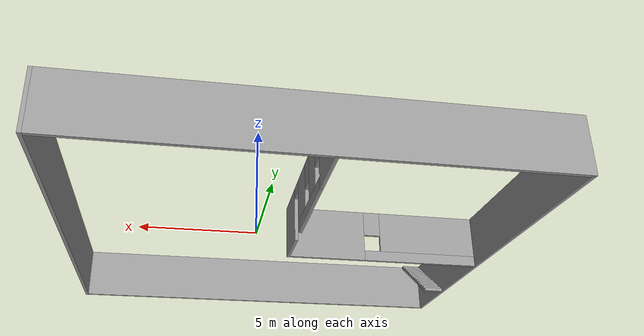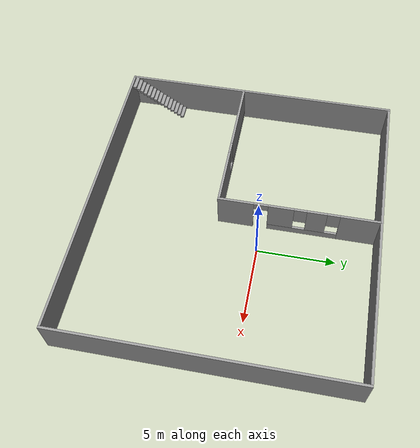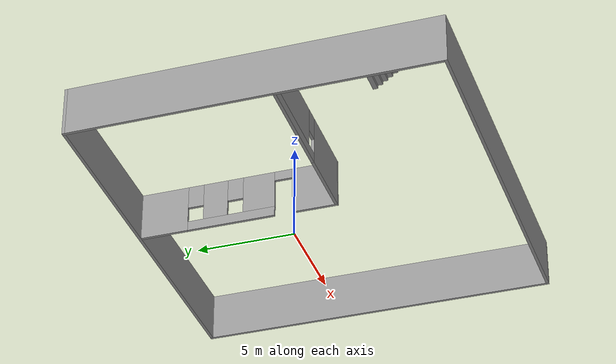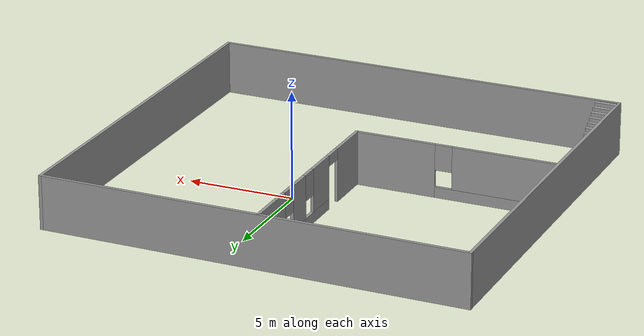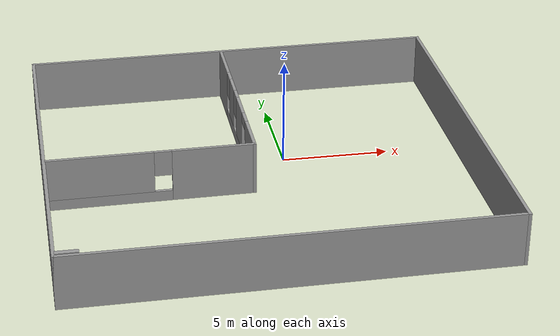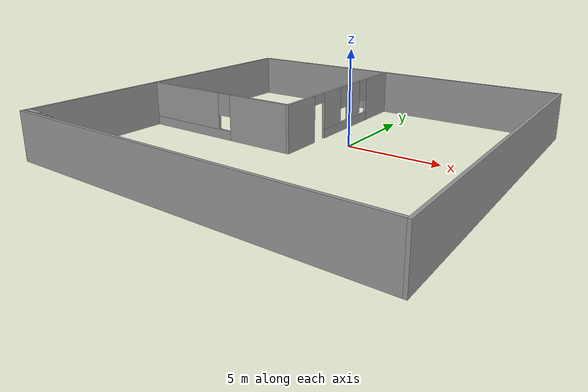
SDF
<?xml version='1.0'?>
<sdf version='1.6'>
  <model name='WorldModel'>
    <pose frame=''>-1.45724 -1.69888 0 0 -0 0</pose>
    <link name='Stairs_0'>
      <visual name='Stairs_0_Visual_0'>
        <pose frame=''>-9.284 -5.52564 0.083333 0 -0 0</pose>
        <geometry>
          <box>
            <size>1 0.233333 0.166667</size>
          </box>
        </geometry>
        <material>
          <script>
            <uri>file://media/materials/scripts/gazebo.material</uri>
            <name>Gazebo/Grey</name>
          </script>
          <ambient>1 1 1 1</ambient>
        </material>
      </visual>
      <collision name='Stairs_0_Collision_0'>
        <geometry>
          <box>
            <size>1 0.233333 0.166667</size>
          </box>
        </geometry>
        <pose frame=''>-9.284 -5.52564 0.083333 0 -0 0</pose>
      </collision>
      <visual name='Stairs_0_Visual_1'>
        <pose frame=''>-9.284 -5.75897 0.25 0 -0 0</pose>
        <geometry>
          <box>
            <size>1 0.233333 0.166667</size>
          </box>
        </geometry>
        <material>
          <script>
            <uri>file://media/materials/scripts/gazebo.material</uri>
            <name>Gazebo/Grey</name>
          </script>
          <ambient>1 1 1 1</ambient>
        </material>
      </visual>
      <collision name='Stairs_0_Collision_1'>
        <geometry>
          <box>
            <size>1 0.233333 0.166667</size>
          </box>
        </geometry>
        <pose frame=''>-9.284 -5.75897 0.25 0 -0 0</pose>
      </collision>
      <visual name='Stairs_0_Visual_2'>
        <pose frame=''>-9.284 -5.9923 0.416667 0 -0 0</pose>
        <geometry>
          <box>
            <size>1 0.233333 0.166667</size>
          </box>
        </geometry>
        <material>
          <script>
            <uri>file://media/materials/scripts/gazebo.material</uri>
            <name>Gazebo/Grey</name>
          </script>
          <ambient>1 1 1 1</ambient>
        </material>
      </visual>
      <collision name='Stairs_0_Collision_2'>
        <geometry>
          <box>
            <size>1 0.233333 0.166667</size>
          </box>
        </geometry>
        <pose frame=''>-9.284 -5.9923 0.416667 0 -0 0</pose>
      </collision>
      <visual name='Stairs_0_Visual_3'>
        <pose frame=''>-9.284 -6.22564 0.583333 0 -0 0</pose>
        <geometry>
          <box>
            <size>1 0.233333 0.166667</size>
          </box>
        </geometry>
        <material>
          <script>
            <uri>file://media/materials/scripts/gazebo.material</uri>
            <name>Gazebo/Grey</name>
          </script>
          <ambient>1 1 1 1</ambient>
        </material>
      </visual>
      <collision name='Stairs_0_Collision_3'>
        <geometry>
          <box>
            <size>1 0.233333 0.166667</size>
          </box>
        </geometry>
        <pose frame=''>-9.284 -6.22564 0.583333 0 -0 0</pose>
      </collision>
      <visual name='Stairs_0_Visual_4'>
        <pose frame=''>-9.284 -6.45897 0.75 0 -0 0</pose>
        <geometry>
          <box>
            <size>1 0.233333 0.166667</size>
          </box>
        </geometry>
        <material>
          <script>
            <uri>file://media/materials/scripts/gazebo.material</uri>
            <name>Gazebo/Grey</name>
          </script>
          <ambient>1 1 1 1</ambient>
        </material>
      </visual>
      <collision name='Stairs_0_Collision_4'>
        <geometry>
          <box>
            <size>1 0.233333 0.166667</size>
          </box>
        </geometry>
        <pose frame=''>-9.284 -6.45897 0.75 0 -0 0</pose>
      </collision>
      <visual name='Stairs_0_Visual_5'>
        <pose frame=''>-9.284 -6.6923 0.916667 0 -0 0</pose>
        <geometry>
          <box>
            <size>1 0.233333 0.166667</size>
          </box>
        </geometry>
        <material>
          <script>
            <uri>file://media/materials/scripts/gazebo.material</uri>
            <name>Gazebo/Grey</name>
          </script>
          <ambient>1 1 1 1</ambient>
        </material>
      </visual>
      <collision name='Stairs_0_Collision_5'>
        <geometry>
          <box>
            <size>1 0.233333 0.166667</size>
          </box>
        </geometry>
        <pose frame=''>-9.284 -6.6923 0.916667 0 -0 0</pose>
      </collision>
      <visual name='Stairs_0_Visual_6'>
        <pose frame=''>-9.284 -6.92564 1.08333 0 -0 0</pose>
        <geometry>
          <box>
            <size>1 0.233333 0.166667</size>
          </box>
        </geometry>
        <material>
          <script>
            <uri>file://media/materials/scripts/gazebo.material</uri>
            <name>Gazebo/Grey</name>
          </script>
          <ambient>1 1 1 1</ambient>
        </material>
      </visual>
      <collision name='Stairs_0_Collision_6'>
        <geometry>
          <box>
            <size>1 0.233333 0.166667</size>
          </box>
        </geometry>
        <pose frame=''>-9.284 -6.92564 1.08333 0 -0 0</pose>
      </collision>
      <visual name='Stairs_0_Visual_7'>
        <pose frame=''>-9.284 -7.15897 1.25 0 -0 0</pose>
        <geometry>
          <box>
            <size>1 0.233333 0.166667</size>
          </box>
        </geometry>
        <material>
          <script>
            <uri>file://media/materials/scripts/gazebo.material</uri>
            <name>Gazebo/Grey</name>
          </script>
          <ambient>1 1 1 1</ambient>
        </material>
      </visual>
      <collision name='Stairs_0_Collision_7'>
        <geometry>
          <box>
            <size>1 0.233333 0.166667</size>
          </box>
        </geometry>
        <pose frame=''>-9.284 -7.15897 1.25 0 -0 0</pose>
      </collision>
      <visual name='Stairs_0_Visual_8'>
        <pose frame=''>-9.284 -7.39231 1.41667 0 -0 0</pose>
        <geometry>
          <box>
            <size>1 0.233333 0.166667</size>
          </box>
        </geometry>
        <material>
          <script>
            <uri>file://media/materials/scripts/gazebo.material</uri>
            <name>Gazebo/Grey</name>
          </script>
          <ambient>1 1 1 1</ambient>
        </material>
      </visual>
      <collision name='Stairs_0_Collision_8'>
        <geometry>
          <box>
            <size>1 0.233333 0.166667</size>
          </box>
        </geometry>
        <pose frame=''>-9.284 -7.39231 1.41667 0 -0 0</pose>
      </collision>
      <visual name='Stairs_0_Visual_9'>
        <pose frame=''>-9.284 -7.62564 1.58333 0 -0 0</pose>
        <geometry>
          <box>
            <size>1 0.233333 0.166667</size>
          </box>
        </geometry>
        <material>
          <script>
            <uri>file://media/materials/scripts/gazebo.material</uri>
            <name>Gazebo/Grey</name>
          </script>
          <ambient>1 1 1 1</ambient>
        </material>
      </visual>
      <collision name='Stairs_0_Collision_9'>
        <geometry>
          <box>
            <size>1 0.233333 0.166667</size>
          </box>
        </geometry>
        <pose frame=''>-9.284 -7.62564 1.58333 0 -0 0</pose>
      </collision>
      <visual name='Stairs_0_Visual_10'>
        <pose frame=''>-9.284 -7.85897 1.75 0 -0 0</pose>
        <geometry>
          <box>
            <size>1 0.233333 0.166667</size>
          </box>
        </geometry>
        <material>
          <script>
            <uri>file://media/materials/scripts/gazebo.material</uri>
            <name>Gazebo/Grey</name>
          </script>
          <ambient>1 1 1 1</ambient>
        </material>
      </visual>
      <collision name='Stairs_0_Collision_10'>
        <geometry>
          <box>
            <size>1 0.233333 0.166667</size>
          </box>
        </geometry>
        <pose frame=''>-9.284 -7.85897 1.75 0 -0 0</pose>
      </collision>
      <visual name='Stairs_0_Visual_11'>
        <pose frame=''>-9.284 -8.0923 1.91667 0 -0 0</pose>
        <geometry>
          <box>
            <size>1 0.233333 0.166667</size>
          </box>
        </geometry>
        <material>
          <script>
            <uri>file://media/materials/scripts/gazebo.material</uri>
            <name>Gazebo/Grey</name>
          </script>
          <ambient>1 1 1 1</ambient>
        </material>
      </visual>
      <collision name='Stairs_0_Collision_11'>
        <geometry>
          <box>
            <size>1 0.233333 0.166667</size>
          </box>
        </geometry>
        <pose frame=''>-9.284 -8.0923 1.91667 0 -0 0</pose>
      </collision>
      <visual name='Stairs_0_Visual_12'>
        <pose frame=''>-9.284 -8.32564 2.08333 0 -0 0</pose>
        <geometry>
          <box>
            <size>1 0.233333 0.166667</size>
          </box>
        </geometry>
        <material>
          <script>
            <uri>file://media/materials/scripts/gazebo.material</uri>
            <name>Gazebo/Grey</name>
          </script>
          <ambient>1 1 1 1</ambient>
        </material>
      </visual>
      <collision name='Stairs_0_Collision_12'>
        <geometry>
          <box>
            <size>1 0.233333 0.166667</size>
          </box>
        </geometry>
        <pose frame=''>-9.284 -8.32564 2.08333 0 -0 0</pose>
      </collision>
      <visual name='Stairs_0_Visual_13'>
        <pose frame=''>-9.284 -8.55897 2.25 0 -0 0</pose>
        <geometry>
          <box>
            <size>1 0.233333 0.166667</size>
          </box>
        </geometry>
        <material>
          <script>
            <uri>file://media/materials/scripts/gazebo.material</uri>
            <name>Gazebo/Grey</name>
          </script>
          <ambient>1 1 1 1</ambient>
        </material>
      </visual>
      <collision name='Stairs_0_Collision_13'>
        <geometry>
          <box>
            <size>1 0.233333 0.166667</size>
          </box>
        </geometry>
        <pose frame=''>-9.284 -8.55897 2.25 0 -0 0</pose>
      </collision>
      <visual name='Stairs_0_Visual_14'>
        <pose frame=''>-9.284 -8.79231 2.41667 0 -0 0</pose>
        <geometry>
          <box>
            <size>1 0.233333 0.166667</size>
          </box>
        </geometry>
        <material>
          <script>
            <uri>file://media/materials/scripts/gazebo.material</uri>
            <name>Gazebo/Grey</name>
          </script>
          <ambient>1 1 1 1</ambient>
        </material>
      </visual>
      <collision name='Stairs_0_Collision_14'>
        <geometry>
          <box>
            <size>1 0.233333 0.166667</size>
          </box>
        </geometry>
        <pose frame=''>-9.284 -8.79231 2.41667 0 -0 0</pose>
      </collision>
    </link>
    <link name='Wall_2'>
      <collision name='Wall_2_Collision'>
        <geometry>
          <box>
            <size>18.25 0.15 2.5</size>
          </box>
        </geometry>
        <pose frame=''>0 0 1.25 0 -0 0</pose>
      </collision>
      <visual name='Wall_2_Visual'>
        <pose frame=''>0 0 1.25 0 -0 0</pose>
        <geometry>
          <box>
            <size>18.25 0.15 2.5</size>
          </box>
        </geometry>
        <material>
          <script>
            <uri>file://media/materials/scripts/gazebo.material</uri>
            <name>Gazebo/Grey</name>
          </script>
          <ambient>1 1 1 1</ambient>
        </material>
      </visual>
      <pose frame=''>-9.82344 0 0 0 0 -1.5708</pose>
    </link>
    <link name='Wall_3'>
      <collision name='Wall_3_Collision'>
        <geometry>
          <box>
            <size>19.6554 0.15 2.5</size>
          </box>
        </geometry>
        <pose frame=''>0 0 1.25 0 -0 0</pose>
      </collision>
      <visual name='Wall_3_Visual'>
        <pose frame=''>0 0 1.25 0 -0 0</pose>
        <geometry>
          <box>
            <size>19.6554 0.15 2.5</size>
          </box>
        </geometry>
        <material>
          <script>
            <uri>file://media/materials/scripts/gazebo.material</uri>
            <name>Gazebo/Grey</name>
          </script>
          <ambient>1 1 1 1</ambient>
        </material>
      </visual>
      <pose frame=''>-0.070757 -9.05 0 0 -0 0</pose>
    </link>
    <link name='Wall_4'>
      <collision name='Wall_4_Collision'>
        <geometry>
          <box>
            <size>18.25 0.15 2.5</size>
          </box>
        </geometry>
        <pose frame=''>0 0 1.25 0 -0 0</pose>
      </collision>
      <visual name='Wall_4_Visual'>
        <pose frame=''>0 0 1.25 0 -0 0</pose>
        <geometry>
          <box>
            <size>18.25 0.15 2.5</size>
          </box>
        </geometry>
        <material>
          <script>
            <uri>file://media/materials/scripts/gazebo.material</uri>
            <name>Gazebo/Grey</name>
          </script>
          <ambient>1 1 1 1</ambient>
        </material>
      </visual>
      <pose frame=''>9.82344 0 0 0 -0 1.5708</pose>
    </link>
    <link name='Wall_5'>
      <collision name='Wall_5_Collision'>
        <geometry>
          <box>
            <size>19.6554 0.15 2.5</size>
          </box>
        </geometry>
        <pose frame=''>0 0 1.25 0 -0 0</pose>
      </collision>
      <visual name='Wall_5_Visual'>
        <pose frame=''>0 0 1.25 0 -0 0</pose>
        <geometry>
          <box>
            <size>19.6554 0.15 2.5</size>
          </box>
        </geometry>
        <material>
          <script>
            <uri>file://media/materials/scripts/gazebo.material</uri>
            <name>Gazebo/Grey</name>
          </script>
          <ambient>1 1 1 1</ambient>
        </material>
      </visual>
      <pose frame=''>-0.070757 9.05 0 0 -0 3.14159</pose>
    </link>
    <link name='Wall_7'>
      <pose frame=''>-0.404125 3.96134 0 0 0 -1.56908</pose>
      <visual name='Wall_7_Visual_0'>
        <pose frame=''>-3.83767 0 1.25 0 -0 0</pose>
        <geometry>
          <box>
            <size>2.51047 0.15 2.5</size>
          </box>
        </geometry>
        <material>
          <script>
            <uri>file://media/materials/scripts/gazebo.material</uri>
            <name>Gazebo/Grey</name>
          </script>
          <ambient>1 1 1 1</ambient>
        </material>
      </visual>
      <collision name='Wall_7_Collision_0'>
        <geometry>
          <box>
            <size>2.51047 0.15 2.5</size>
          </box>
        </geometry>
        <pose frame=''>-3.83767 0 1.25 0 -0 0</pose>
      </collision>
      <visual name='Wall_7_Visual_1'>
        <pose frame=''>3.94476 0 1.25 0 -0 0</pose>
        <geometry>
          <box>
            <size>2.2963 0.15 2.5</size>
          </box>
        </geometry>
        <material>
          <script>
            <uri>file://media/materials/scripts/gazebo.material</uri>
            <name>Gazebo/Grey</name>
          </script>
          <ambient>1 1 1 1</ambient>
        </material>
      </visual>
      <collision name='Wall_7_Collision_1'>
        <geometry>
          <box>
            <size>2.2963 0.15 2.5</size>
          </box>
        </geometry>
        <pose frame=''>3.94476 0 1.25 0 -0 0</pose>
      </collision>
      <visual name='Wall_7_Visual_2'>
        <pose frame=''>-0.342911 0 0.25 0 -0 0</pose>
        <geometry>
          <box>
            <size>4.47905 0.15 0.5</size>
          </box>
        </geometry>
        <material>
          <script>
            <uri>file://media/materials/scripts/gazebo.material</uri>
            <name>Gazebo/Grey</name>
          </script>
          <ambient>1 1 1 1</ambient>
        </material>
      </visual>
      <collision name='Wall_7_Collision_2'>
        <geometry>
          <box>
            <size>4.47905 0.15 0.5</size>
          </box>
        </geometry>
        <pose frame=''>-0.342911 0 0.25 0 -0 0</pose>
      </collision>
      <visual name='Wall_7_Visual_3'>
        <pose frame=''>-1.15622 0 1.5 0 -0 0</pose>
        <geometry>
          <box>
            <size>1.25244 0.15 2</size>
          </box>
        </geometry>
        <material>
          <script>
            <uri>file://media/materials/scripts/gazebo.material</uri>
            <name>Gazebo/Grey</name>
          </script>
          <ambient>1 1 1 1</ambient>
        </material>
      </visual>
      <collision name='Wall_7_Collision_3'>
        <geometry>
          <box>
            <size>1.25244 0.15 2</size>
          </box>
        </geometry>
        <pose frame=''>-1.15622 0 1.5 0 -0 0</pose>
      </collision>
      <visual name='Wall_7_Visual_4'>
        <pose frame=''>1.08331 0 1.5 0 -0 0</pose>
        <geometry>
          <box>
            <size>1.62661 0.15 2</size>
          </box>
        </geometry>
        <material>
          <script>
            <uri>file://media/materials/scripts/gazebo.material</uri>
            <name>Gazebo/Grey</name>
          </script>
          <ambient>1 1 1 1</ambient>
        </material>
      </visual>
      <collision name='Wall_7_Collision_4'>
        <geometry>
          <box>
            <size>1.62661 0.15 2</size>
          </box>
        </geometry>
        <pose frame=''>1.08331 0 1.5 0 -0 0</pose>
      </collision>
      <visual name='Wall_7_Visual_5'>
        <pose frame=''>-2.18244 0 1.9 0 -0 0</pose>
        <geometry>
          <box>
            <size>0.8 0.15 1.2</size>
          </box>
        </geometry>
        <material>
          <script>
            <uri>file://media/materials/scripts/gazebo.material</uri>
            <name>Gazebo/Grey</name>
          </script>
          <ambient>1 1 1 1</ambient>
        </material>
      </visual>
      <collision name='Wall_7_Collision_5'>
        <geometry>
          <box>
            <size>0.8 0.15 1.2</size>
          </box>
        </geometry>
        <pose frame=''>-2.18244 0 1.9 0 -0 0</pose>
      </collision>
      <visual name='Wall_7_Visual_6'>
        <pose frame=''>-0.13 0 1.9 0 -0 0</pose>
        <geometry>
          <box>
            <size>0.8 0.15 1.2</size>
          </box>
        </geometry>
        <material>
          <script>
            <uri>file://media/materials/scripts/gazebo.material</uri>
            <name>Gazebo/Grey</name>
          </script>
          <ambient>1 1 1 1</ambient>
        </material>
      </visual>
      <collision name='Wall_7_Collision_6'>
        <geometry>
          <box>
            <size>0.8 0.15 1.2</size>
          </box>
        </geometry>
        <pose frame=''>-0.13 0 1.9 0 -0 0</pose>
      </collision>
      <visual name='Wall_7_Visual_7'>
        <pose frame=''>2.34661 0 2.25 0 -0 0</pose>
        <geometry>
          <box>
            <size>0.9 0.15 0.5</size>
          </box>
        </geometry>
        <material>
          <script>
            <uri>file://media/materials/scripts/gazebo.material</uri>
            <name>Gazebo/Grey</name>
          </script>
          <ambient>1 1 1 1</ambient>
        </material>
      </visual>
      <collision name='Wall_7_Collision_7'>
        <geometry>
          <box>
            <size>0.9 0.15 0.5</size>
          </box>
        </geometry>
        <pose frame=''>2.34661 0 2.25 0 -0 0</pose>
      </collision>
    </link>
    <link name='Wall_8'>
      <pose frame=''>-5.0902 -1.08332 0 0 0 -3.13581</pose>
      <visual name='Wall_8_Visual_0'>
        <pose frame=''>-2.82279 0 1.25 0 -0 0</pose>
        <geometry>
          <box>
            <size>3.75246 0.15 2.5</size>
          </box>
        </geometry>
        <material>
          <script>
            <uri>file://media/materials/scripts/gazebo.material</uri>
            <name>Gazebo/Grey</name>
          </script>
          <ambient>1 1 1 1</ambient>
        </material>
      </visual>
      <collision name='Wall_8_Collision_0'>
        <geometry>
          <box>
            <size>3.75246 0.15 2.5</size>
          </box>
        </geometry>
        <pose frame=''>-2.82279 0 1.25 0 -0 0</pose>
      </collision>
      <visual name='Wall_8_Visual_1'>
        <pose frame=''>1.87623 0 0.25 0 -0 0</pose>
        <geometry>
          <box>
            <size>5.64558 0.15 0.5</size>
          </box>
        </geometry>
        <material>
          <script>
            <uri>file://media/materials/scripts/gazebo.material</uri>
            <name>Gazebo/Grey</name>
          </script>
          <ambient>1 1 1 1</ambient>
        </material>
      </visual>
      <collision name='Wall_8_Collision_1'>
        <geometry>
          <box>
            <size>5.64558 0.15 0.5</size>
          </box>
        </geometry>
        <pose frame=''>1.87623 0 0.25 0 -0 0</pose>
      </collision>
      <visual name='Wall_8_Visual_2'>
        <pose frame=''>2.27623 0 1.5 0 -0 0</pose>
        <geometry>
          <box>
            <size>4.84558 0.15 2</size>
          </box>
        </geometry>
        <material>
          <script>
            <uri>file://media/materials/scripts/gazebo.material</uri>
            <name>Gazebo/Grey</name>
          </script>
          <ambient>1 1 1 1</ambient>
        </material>
      </visual>
      <collision name='Wall_8_Collision_2'>
        <geometry>
          <box>
            <size>4.84558 0.15 2</size>
          </box>
        </geometry>
        <pose frame=''>2.27623 0 1.5 0 -0 0</pose>
      </collision>
      <visual name='Wall_8_Visual_3'>
        <pose frame=''>-0.546557 0 1.9 0 -0 0</pose>
        <geometry>
          <box>
            <size>0.8 0.15 1.2</size>
          </box>
        </geometry>
        <material>
          <script>
            <uri>file://media/materials/scripts/gazebo.material</uri>
            <name>Gazebo/Grey</name>
          </script>
          <ambient>1 1 1 1</ambient>
        </material>
      </visual>
      <collision name='Wall_8_Collision_3'>
        <geometry>
          <box>
            <size>0.8 0.15 1.2</size>
          </box>
        </geometry>
        <pose frame=''>-0.546557 0 1.9 0 -0 0</pose>
      </collision>
    </link>
    <static>1</static>
  </model>
</sdf>
